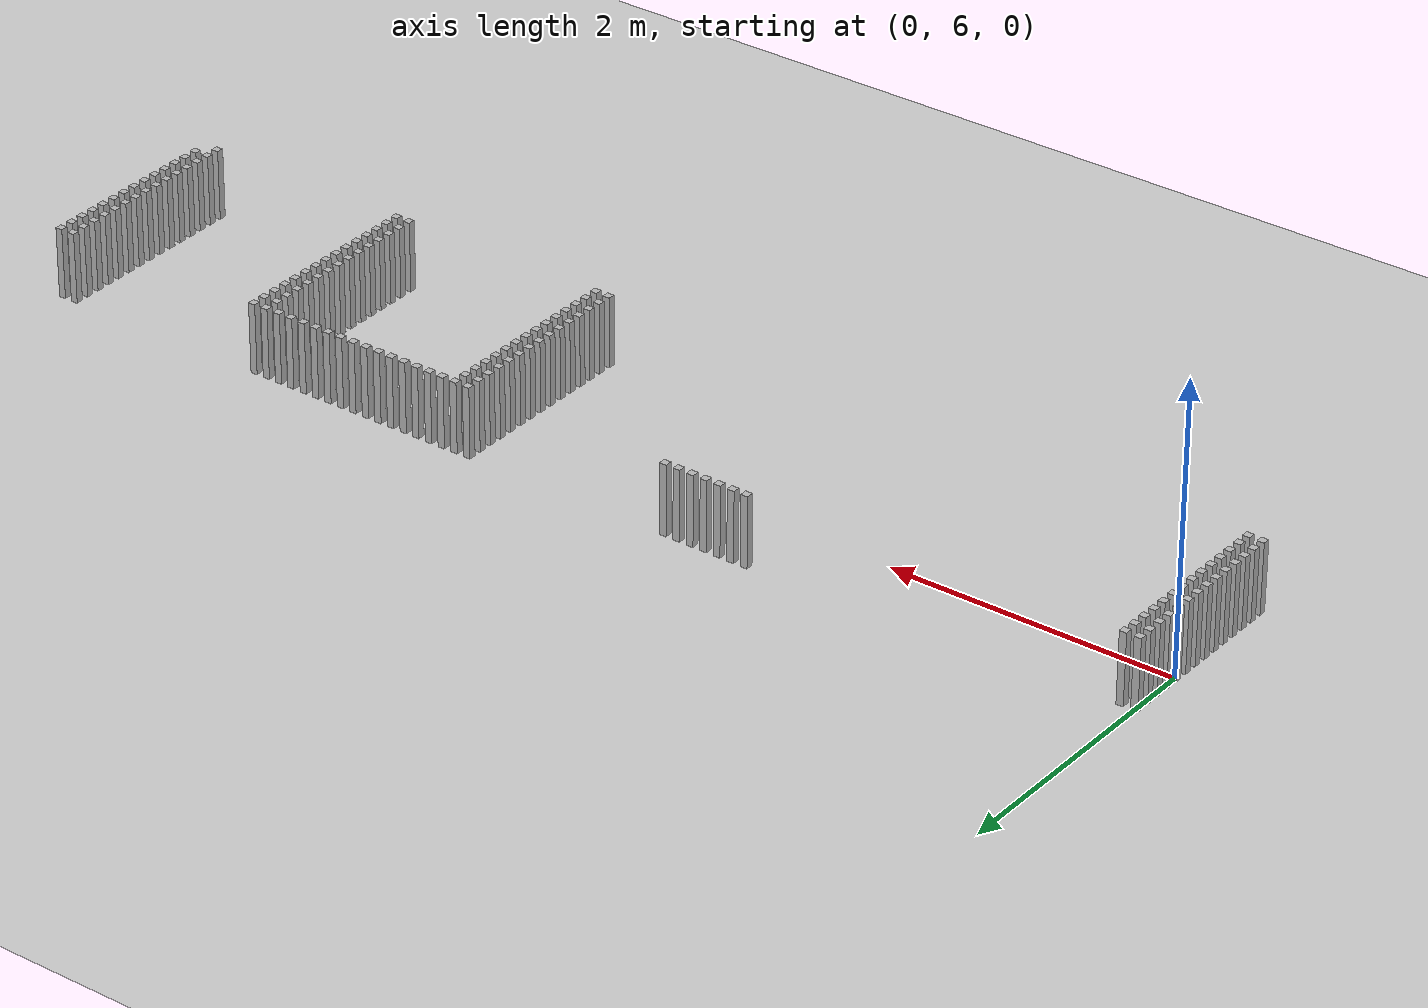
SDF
<sdf version="1.6">
 <world name="default_world">
  <include><uri>model://sun</uri></include>
  <include><uri>model://ground_plane</uri></include>
  <model name="wall_273">
   <static>true</static>
   <link name="link">
    <collision name="collision"><geometry><box><size>0.05 0.05 0.5</size></box></geometry></collision>
    <visual name="visual"><geometry><box><size>0.05 0.05 0.5</size></box></geometry></visual>
    <pose>2.7 6.5 0.25 0 0 0</pose>
   </link>
  </model>
  <model name="wall_274">
   <static>true</static>
   <link name="link">
    <collision name="collision"><geometry><box><size>0.05 0.05 0.5</size></box></geometry></collision>
    <visual name="visual"><geometry><box><size>0.05 0.05 0.5</size></box></geometry></visual>
    <pose>2.8000000000000003 6.5 0.25 0 0 0</pose>
   </link>
  </model>
  <model name="wall_275">
   <static>true</static>
   <link name="link">
    <collision name="collision"><geometry><box><size>0.05 0.05 0.5</size></box></geometry></collision>
    <visual name="visual"><geometry><box><size>0.05 0.05 0.5</size></box></geometry></visual>
    <pose>2.9000000000000004 6.5 0.25 0 0 0</pose>
   </link>
  </model>
  <model name="wall_276">
   <static>true</static>
   <link name="link">
    <collision name="collision"><geometry><box><size>0.05 0.05 0.5</size></box></geometry></collision>
    <visual name="visual"><geometry><box><size>0.05 0.05 0.5</size></box></geometry></visual>
    <pose>3.0 6.5 0.25 0 0 0</pose>
   </link>
  </model>
  <model name="wall_277">
   <static>true</static>
   <link name="link">
    <collision name="collision"><geometry><box><size>0.05 0.05 0.5</size></box></geometry></collision>
    <visual name="visual"><geometry><box><size>0.05 0.05 0.5</size></box></geometry></visual>
    <pose>3.1 6.5 0.25 0 0 0</pose>
   </link>
  </model>
  <model name="wall_278">
   <static>true</static>
   <link name="link">
    <collision name="collision"><geometry><box><size>0.05 0.05 0.5</size></box></geometry></collision>
    <visual name="visual"><geometry><box><size>0.05 0.05 0.5</size></box></geometry></visual>
    <pose>3.2 6.5 0.25 0 0 0</pose>
   </link>
  </model>
  <model name="wall_279">
   <static>true</static>
   <link name="link">
    <collision name="collision"><geometry><box><size>0.05 0.05 0.5</size></box></geometry></collision>
    <visual name="visual"><geometry><box><size>0.05 0.05 0.5</size></box></geometry></visual>
    <pose>3.3000000000000003 6.5 0.25 0 0 0</pose>
   </link>
  </model>
  <model name="wall_280">
   <static>true</static>
   <link name="link">
    <collision name="collision"><geometry><box><size>0.05 0.05 0.5</size></box></geometry></collision>
    <visual name="visual"><geometry><box><size>0.05 0.05 0.5</size></box></geometry></visual>
    <pose>4.800000000000001 6.5 0.25 0 0 0</pose>
   </link>
  </model>
  <model name="wall_281">
   <static>true</static>
   <link name="link">
    <collision name="collision"><geometry><box><size>0.05 0.05 0.5</size></box></geometry></collision>
    <visual name="visual"><geometry><box><size>0.05 0.05 0.5</size></box></geometry></visual>
    <pose>4.9 6.5 0.25 0 0 0</pose>
   </link>
  </model>
  <model name="wall_282">
   <static>true</static>
   <link name="link">
    <collision name="collision"><geometry><box><size>0.05 0.05 0.5</size></box></geometry></collision>
    <visual name="visual"><geometry><box><size>0.05 0.05 0.5</size></box></geometry></visual>
    <pose>5.0 6.5 0.25 0 0 0</pose>
   </link>
  </model>
  <model name="wall_283">
   <static>true</static>
   <link name="link">
    <collision name="collision"><geometry><box><size>0.05 0.05 0.5</size></box></geometry></collision>
    <visual name="visual"><geometry><box><size>0.05 0.05 0.5</size></box></geometry></visual>
    <pose>5.1000000000000005 6.5 0.25 0 0 0</pose>
   </link>
  </model>
  <model name="wall_284">
   <static>true</static>
   <link name="link">
    <collision name="collision"><geometry><box><size>0.05 0.05 0.5</size></box></geometry></collision>
    <visual name="visual"><geometry><box><size>0.05 0.05 0.5</size></box></geometry></visual>
    <pose>5.2 6.5 0.25 0 0 0</pose>
   </link>
  </model>
  <model name="wall_285">
   <static>true</static>
   <link name="link">
    <collision name="collision"><geometry><box><size>0.05 0.05 0.5</size></box></geometry></collision>
    <visual name="visual"><geometry><box><size>0.05 0.05 0.5</size></box></geometry></visual>
    <pose>5.300000000000001 6.5 0.25 0 0 0</pose>
   </link>
  </model>
  <model name="wall_286">
   <static>true</static>
   <link name="link">
    <collision name="collision"><geometry><box><size>0.05 0.05 0.5</size></box></geometry></collision>
    <visual name="visual"><geometry><box><size>0.05 0.05 0.5</size></box></geometry></visual>
    <pose>5.4 6.5 0.25 0 0 0</pose>
   </link>
  </model>
  <model name="wall_287">
   <static>true</static>
   <link name="link">
    <collision name="collision"><geometry><box><size>0.05 0.05 0.5</size></box></geometry></collision>
    <visual name="visual"><geometry><box><size>0.05 0.05 0.5</size></box></geometry></visual>
    <pose>5.5 6.5 0.25 0 0 0</pose>
   </link>
  </model>
  <model name="wall_288">
   <static>true</static>
   <link name="link">
    <collision name="collision"><geometry><box><size>0.05 0.05 0.5</size></box></geometry></collision>
    <visual name="visual"><geometry><box><size>0.05 0.05 0.5</size></box></geometry></visual>
    <pose>5.6000000000000005 6.5 0.25 0 0 0</pose>
   </link>
  </model>
  <model name="wall_289">
   <static>true</static>
   <link name="link">
    <collision name="collision"><geometry><box><size>0.05 0.05 0.5</size></box></geometry></collision>
    <visual name="visual"><geometry><box><size>0.05 0.05 0.5</size></box></geometry></visual>
    <pose>5.7 6.5 0.25 0 0 0</pose>
   </link>
  </model>
  <model name="wall_290">
   <static>true</static>
   <link name="link">
    <collision name="collision"><geometry><box><size>0.05 0.05 0.5</size></box></geometry></collision>
    <visual name="visual"><geometry><box><size>0.05 0.05 0.5</size></box></geometry></visual>
    <pose>5.800000000000001 6.5 0.25 0 0 0</pose>
   </link>
  </model>
  <model name="wall_291">
   <static>true</static>
   <link name="link">
    <collision name="collision"><geometry><box><size>0.05 0.05 0.5</size></box></geometry></collision>
    <visual name="visual"><geometry><box><size>0.05 0.05 0.5</size></box></geometry></visual>
    <pose>5.9 6.5 0.25 0 0 0</pose>
   </link>
  </model>
  <model name="wall_292">
   <static>true</static>
   <link name="link">
    <collision name="collision"><geometry><box><size>0.05 0.05 0.5</size></box></geometry></collision>
    <visual name="visual"><geometry><box><size>0.05 0.05 0.5</size></box></geometry></visual>
    <pose>6.0 6.5 0.25 0 0 0</pose>
   </link>
  </model>
  <model name="wall_293">
   <static>true</static>
   <link name="link">
    <collision name="collision"><geometry><box><size>0.05 0.05 0.5</size></box></geometry></collision>
    <visual name="visual"><geometry><box><size>0.05 0.05 0.5</size></box></geometry></visual>
    <pose>6.1000000000000005 6.5 0.25 0 0 0</pose>
   </link>
  </model>
  <model name="wall_294">
   <static>true</static>
   <link name="link">
    <collision name="collision"><geometry><box><size>0.05 0.05 0.5</size></box></geometry></collision>
    <visual name="visual"><geometry><box><size>0.05 0.05 0.5</size></box></geometry></visual>
    <pose>6.2 6.5 0.25 0 0 0</pose>
   </link>
  </model>
  <model name="wall_295">
   <static>true</static>
   <link name="link">
    <collision name="collision"><geometry><box><size>0.05 0.05 0.5</size></box></geometry></collision>
    <visual name="visual"><geometry><box><size>0.05 0.05 0.5</size></box></geometry></visual>
    <pose>6.300000000000001 6.5 0.25 0 0 0</pose>
   </link>
  </model>
  <model name="wall_296">
   <static>true</static>
   <link name="link">
    <collision name="collision"><geometry><box><size>0.05 0.05 0.5</size></box></geometry></collision>
    <visual name="visual"><geometry><box><size>0.05 0.05 0.5</size></box></geometry></visual>
    <pose>6.4 6.5 0.25 0 0 0</pose>
   </link>
  </model>
  <model name="wall_297">
   <static>true</static>
   <link name="link">
    <collision name="collision"><geometry><box><size>0.05 0.05 0.5</size></box></geometry></collision>
    <visual name="visual"><geometry><box><size>0.05 0.05 0.5</size></box></geometry></visual>
    <pose>6.5 6.5 0.25 0 0 0</pose>
   </link>
  </model>
  <model name="wall_298">
   <static>true</static>
   <link name="link">
    <collision name="collision"><geometry><box><size>0.05 0.05 0.5</size></box></geometry></collision>
    <visual name="visual"><geometry><box><size>0.05 0.05 0.5</size></box></geometry></visual>
    <pose>8.0 6.5 0.25 0 0 0</pose>
   </link>
  </model>
  <model name="wall_299">
   <static>true</static>
   <link name="link">
    <collision name="collision"><geometry><box><size>0.05 0.05 0.5</size></box></geometry></collision>
    <visual name="visual"><geometry><box><size>0.05 0.05 0.5</size></box></geometry></visual>
    <pose>8.1 6.5 0.25 0 0 0</pose>
   </link>
  </model>
  <model name="wall_300">
   <static>true</static>
   <link name="link">
    <collision name="collision"><geometry><box><size>0.05 0.05 0.5</size></box></geometry></collision>
    <visual name="visual"><geometry><box><size>0.05 0.05 0.5</size></box></geometry></visual>
    <pose>0.0 6.4 0.25 0 0 0</pose>
   </link>
  </model>
  <model name="wall_301">
   <static>true</static>
   <link name="link">
    <collision name="collision"><geometry><box><size>0.05 0.05 0.5</size></box></geometry></collision>
    <visual name="visual"><geometry><box><size>0.05 0.05 0.5</size></box></geometry></visual>
    <pose>0.1 6.4 0.25 0 0 0</pose>
   </link>
  </model>
  <model name="wall_302">
   <static>true</static>
   <link name="link">
    <collision name="collision"><geometry><box><size>0.05 0.05 0.5</size></box></geometry></collision>
    <visual name="visual"><geometry><box><size>0.05 0.05 0.5</size></box></geometry></visual>
    <pose>4.800000000000001 6.4 0.25 0 0 0</pose>
   </link>
  </model>
  <model name="wall_303">
   <static>true</static>
   <link name="link">
    <collision name="collision"><geometry><box><size>0.05 0.05 0.5</size></box></geometry></collision>
    <visual name="visual"><geometry><box><size>0.05 0.05 0.5</size></box></geometry></visual>
    <pose>4.9 6.4 0.25 0 0 0</pose>
   </link>
  </model>
  <model name="wall_304">
   <static>true</static>
   <link name="link">
    <collision name="collision"><geometry><box><size>0.05 0.05 0.5</size></box></geometry></collision>
    <visual name="visual"><geometry><box><size>0.05 0.05 0.5</size></box></geometry></visual>
    <pose>6.4 6.4 0.25 0 0 0</pose>
   </link>
  </model>
  <model name="wall_305">
   <static>true</static>
   <link name="link">
    <collision name="collision"><geometry><box><size>0.05 0.05 0.5</size></box></geometry></collision>
    <visual name="visual"><geometry><box><size>0.05 0.05 0.5</size></box></geometry></visual>
    <pose>6.5 6.4 0.25 0 0 0</pose>
   </link>
  </model>
  <model name="wall_306">
   <static>true</static>
   <link name="link">
    <collision name="collision"><geometry><box><size>0.05 0.05 0.5</size></box></geometry></collision>
    <visual name="visual"><geometry><box><size>0.05 0.05 0.5</size></box></geometry></visual>
    <pose>8.0 6.4 0.25 0 0 0</pose>
   </link>
  </model>
  <model name="wall_307">
   <static>true</static>
   <link name="link">
    <collision name="collision"><geometry><box><size>0.05 0.05 0.5</size></box></geometry></collision>
    <visual name="visual"><geometry><box><size>0.05 0.05 0.5</size></box></geometry></visual>
    <pose>8.1 6.4 0.25 0 0 0</pose>
   </link>
  </model>
  <model name="wall_308">
   <static>true</static>
   <link name="link">
    <collision name="collision"><geometry><box><size>0.05 0.05 0.5</size></box></geometry></collision>
    <visual name="visual"><geometry><box><size>0.05 0.05 0.5</size></box></geometry></visual>
    <pose>0.0 6.300000000000001 0.25 0 0 0</pose>
   </link>
  </model>
  <model name="wall_309">
   <static>true</static>
   <link name="link">
    <collision name="collision"><geometry><box><size>0.05 0.05 0.5</size></box></geometry></collision>
    <visual name="visual"><geometry><box><size>0.05 0.05 0.5</size></box></geometry></visual>
    <pose>0.1 6.300000000000001 0.25 0 0 0</pose>
   </link>
  </model>
  <model name="wall_310">
   <static>true</static>
   <link name="link">
    <collision name="collision"><geometry><box><size>0.05 0.05 0.5</size></box></geometry></collision>
    <visual name="visual"><geometry><box><size>0.05 0.05 0.5</size></box></geometry></visual>
    <pose>4.800000000000001 6.300000000000001 0.25 0 0 0</pose>
   </link>
  </model>
  <model name="wall_311">
   <static>true</static>
   <link name="link">
    <collision name="collision"><geometry><box><size>0.05 0.05 0.5</size></box></geometry></collision>
    <visual name="visual"><geometry><box><size>0.05 0.05 0.5</size></box></geometry></visual>
    <pose>4.9 6.300000000000001 0.25 0 0 0</pose>
   </link>
  </model>
  <model name="wall_312">
   <static>true</static>
   <link name="link">
    <collision name="collision"><geometry><box><size>0.05 0.05 0.5</size></box></geometry></collision>
    <visual name="visual"><geometry><box><size>0.05 0.05 0.5</size></box></geometry></visual>
    <pose>6.4 6.300000000000001 0.25 0 0 0</pose>
   </link>
  </model>
  <model name="wall_313">
   <static>true</static>
   <link name="link">
    <collision name="collision"><geometry><box><size>0.05 0.05 0.5</size></box></geometry></collision>
    <visual name="visual"><geometry><box><size>0.05 0.05 0.5</size></box></geometry></visual>
    <pose>6.5 6.300000000000001 0.25 0 0 0</pose>
   </link>
  </model>
  <model name="wall_314">
   <static>true</static>
   <link name="link">
    <collision name="collision"><geometry><box><size>0.05 0.05 0.5</size></box></geometry></collision>
    <visual name="visual"><geometry><box><size>0.05 0.05 0.5</size></box></geometry></visual>
    <pose>8.0 6.300000000000001 0.25 0 0 0</pose>
   </link>
  </model>
  <model name="wall_315">
   <static>true</static>
   <link name="link">
    <collision name="collision"><geometry><box><size>0.05 0.05 0.5</size></box></geometry></collision>
    <visual name="visual"><geometry><box><size>0.05 0.05 0.5</size></box></geometry></visual>
    <pose>8.1 6.300000000000001 0.25 0 0 0</pose>
   </link>
  </model>
  <model name="wall_316">
   <static>true</static>
   <link name="link">
    <collision name="collision"><geometry><box><size>0.05 0.05 0.5</size></box></geometry></collision>
    <visual name="visual"><geometry><box><size>0.05 0.05 0.5</size></box></geometry></visual>
    <pose>0.0 6.2 0.25 0 0 0</pose>
   </link>
  </model>
  <model name="wall_317">
   <static>true</static>
   <link name="link">
    <collision name="collision"><geometry><box><size>0.05 0.05 0.5</size></box></geometry></collision>
    <visual name="visual"><geometry><box><size>0.05 0.05 0.5</size></box></geometry></visual>
    <pose>0.1 6.2 0.25 0 0 0</pose>
   </link>
  </model>
  <model name="wall_318">
   <static>true</static>
   <link name="link">
    <collision name="collision"><geometry><box><size>0.05 0.05 0.5</size></box></geometry></collision>
    <visual name="visual"><geometry><box><size>0.05 0.05 0.5</size></box></geometry></visual>
    <pose>4.800000000000001 6.2 0.25 0 0 0</pose>
   </link>
  </model>
  <model name="wall_319">
   <static>true</static>
   <link name="link">
    <collision name="collision"><geometry><box><size>0.05 0.05 0.5</size></box></geometry></collision>
    <visual name="visual"><geometry><box><size>0.05 0.05 0.5</size></box></geometry></visual>
    <pose>4.9 6.2 0.25 0 0 0</pose>
   </link>
  </model>
  <model name="wall_320">
   <static>true</static>
   <link name="link">
    <collision name="collision"><geometry><box><size>0.05 0.05 0.5</size></box></geometry></collision>
    <visual name="visual"><geometry><box><size>0.05 0.05 0.5</size></box></geometry></visual>
    <pose>6.4 6.2 0.25 0 0 0</pose>
   </link>
  </model>
  <model name="wall_321">
   <static>true</static>
   <link name="link">
    <collision name="collision"><geometry><box><size>0.05 0.05 0.5</size></box></geometry></collision>
    <visual name="visual"><geometry><box><size>0.05 0.05 0.5</size></box></geometry></visual>
    <pose>6.5 6.2 0.25 0 0 0</pose>
   </link>
  </model>
  <model name="wall_322">
   <static>true</static>
   <link name="link">
    <collision name="collision"><geometry><box><size>0.05 0.05 0.5</size></box></geometry></collision>
    <visual name="visual"><geometry><box><size>0.05 0.05 0.5</size></box></geometry></visual>
    <pose>8.0 6.2 0.25 0 0 0</pose>
   </link>
  </model>
  <model name="wall_323">
   <static>true</static>
   <link name="link">
    <collision name="collision"><geometry><box><size>0.05 0.05 0.5</size></box></geometry></collision>
    <visual name="visual"><geometry><box><size>0.05 0.05 0.5</size></box></geometry></visual>
    <pose>8.1 6.2 0.25 0 0 0</pose>
   </link>
  </model>
  <model name="wall_324">
   <static>true</static>
   <link name="link">
    <collision name="collision"><geometry><box><size>0.05 0.05 0.5</size></box></geometry></collision>
    <visual name="visual"><geometry><box><size>0.05 0.05 0.5</size></box></geometry></visual>
    <pose>0.0 6.1000000000000005 0.25 0 0 0</pose>
   </link>
  </model>
  <model name="wall_325">
   <static>true</static>
   <link name="link">
    <collision name="collision"><geometry><box><size>0.05 0.05 0.5</size></box></geometry></collision>
    <visual name="visual"><geometry><box><size>0.05 0.05 0.5</size></box></geometry></visual>
    <pose>0.1 6.1000000000000005 0.25 0 0 0</pose>
   </link>
  </model>
  <model name="wall_326">
   <static>true</static>
   <link name="link">
    <collision name="collision"><geometry><box><size>0.05 0.05 0.5</size></box></geometry></collision>
    <visual name="visual"><geometry><box><size>0.05 0.05 0.5</size></box></geometry></visual>
    <pose>4.800000000000001 6.1000000000000005 0.25 0 0 0</pose>
   </link>
  </model>
  <model name="wall_327">
   <static>true</static>
   <link name="link">
    <collision name="collision"><geometry><box><size>0.05 0.05 0.5</size></box></geometry></collision>
    <visual name="visual"><geometry><box><size>0.05 0.05 0.5</size></box></geometry></visual>
    <pose>4.9 6.1000000000000005 0.25 0 0 0</pose>
   </link>
  </model>
  <model name="wall_328">
   <static>true</static>
   <link name="link">
    <collision name="collision"><geometry><box><size>0.05 0.05 0.5</size></box></geometry></collision>
    <visual name="visual"><geometry><box><size>0.05 0.05 0.5</size></box></geometry></visual>
    <pose>6.4 6.1000000000000005 0.25 0 0 0</pose>
   </link>
  </model>
  <model name="wall_329">
   <static>true</static>
   <link name="link">
    <collision name="collision"><geometry><box><size>0.05 0.05 0.5</size></box></geometry></collision>
    <visual name="visual"><geometry><box><size>0.05 0.05 0.5</size></box></geometry></visual>
    <pose>6.5 6.1000000000000005 0.25 0 0 0</pose>
   </link>
  </model>
  <model name="wall_330">
   <static>true</static>
   <link name="link">
    <collision name="collision"><geometry><box><size>0.05 0.05 0.5</size></box></geometry></collision>
    <visual name="visual"><geometry><box><size>0.05 0.05 0.5</size></box></geometry></visual>
    <pose>8.0 6.1000000000000005 0.25 0 0 0</pose>
   </link>
  </model>
  <model name="wall_331">
   <static>true</static>
   <link name="link">
    <collision name="collision"><geometry><box><size>0.05 0.05 0.5</size></box></geometry></collision>
    <visual name="visual"><geometry><box><size>0.05 0.05 0.5</size></box></geometry></visual>
    <pose>8.1 6.1000000000000005 0.25 0 0 0</pose>
   </link>
  </model>
  <model name="wall_332">
   <static>true</static>
   <link name="link">
    <collision name="collision"><geometry><box><size>0.05 0.05 0.5</size></box></geometry></collision>
    <visual name="visual"><geometry><box><size>0.05 0.05 0.5</size></box></geometry></visual>
    <pose>0.0 6.0 0.25 0 0 0</pose>
   </link>
  </model>
  <model name="wall_333">
   <static>true</static>
   <link name="link">
    <collision name="collision"><geometry><box><size>0.05 0.05 0.5</size></box></geometry></collision>
    <visual name="visual"><geometry><box><size>0.05 0.05 0.5</size></box></geometry></visual>
    <pose>0.1 6.0 0.25 0 0 0</pose>
   </link>
  </model>
  <model name="wall_334">
   <static>true</static>
   <link name="link">
    <collision name="collision"><geometry><box><size>0.05 0.05 0.5</size></box></geometry></collision>
    <visual name="visual"><geometry><box><size>0.05 0.05 0.5</size></box></geometry></visual>
    <pose>4.800000000000001 6.0 0.25 0 0 0</pose>
   </link>
  </model>
  <model name="wall_335">
   <static>true</static>
   <link name="link">
    <collision name="collision"><geometry><box><size>0.05 0.05 0.5</size></box></geometry></collision>
    <visual name="visual"><geometry><box><size>0.05 0.05 0.5</size></box></geometry></visual>
    <pose>4.9 6.0 0.25 0 0 0</pose>
   </link>
  </model>
  <model name="wall_336">
   <static>true</static>
   <link name="link">
    <collision name="collision"><geometry><box><size>0.05 0.05 0.5</size></box></geometry></collision>
    <visual name="visual"><geometry><box><size>0.05 0.05 0.5</size></box></geometry></visual>
    <pose>6.4 6.0 0.25 0 0 0</pose>
   </link>
  </model>
  <model name="wall_337">
   <static>true</static>
   <link name="link">
    <collision name="collision"><geometry><box><size>0.05 0.05 0.5</size></box></geometry></collision>
    <visual name="visual"><geometry><box><size>0.05 0.05 0.5</size></box></geometry></visual>
    <pose>6.5 6.0 0.25 0 0 0</pose>
   </link>
  </model>
  <model name="wall_338">
   <static>true</static>
   <link name="link">
    <collision name="collision"><geometry><box><size>0.05 0.05 0.5</size></box></geometry></collision>
    <visual name="visual"><geometry><box><size>0.05 0.05 0.5</size></box></geometry></visual>
    <pose>8.0 6.0 0.25 0 0 0</pose>
   </link>
  </model>
  <model name="wall_339">
   <static>true</static>
   <link name="link">
    <collision name="collision"><geometry><box><size>0.05 0.05 0.5</size></box></geometry></collision>
    <visual name="visual"><geometry><box><size>0.05 0.05 0.5</size></box></geometry></visual>
    <pose>8.1 6.0 0.25 0 0 0</pose>
   </link>
  </model>
  <model name="wall_340">
   <static>true</static>
   <link name="link">
    <collision name="collision"><geometry><box><size>0.05 0.05 0.5</size></box></geometry></collision>
    <visual name="visual"><geometry><box><size>0.05 0.05 0.5</size></box></geometry></visual>
    <pose>0.0 5.9 0.25 0 0 0</pose>
   </link>
  </model>
  <model name="wall_341">
   <static>true</static>
   <link name="link">
    <collision name="collision"><geometry><box><size>0.05 0.05 0.5</size></box></geometry></collision>
    <visual name="visual"><geometry><box><size>0.05 0.05 0.5</size></box></geometry></visual>
    <pose>0.1 5.9 0.25 0 0 0</pose>
   </link>
  </model>
  <model name="wall_342">
   <static>true</static>
   <link name="link">
    <collision name="collision"><geometry><box><size>0.05 0.05 0.5</size></box></geometry></collision>
    <visual name="visual"><geometry><box><size>0.05 0.05 0.5</size></box></geometry></visual>
    <pose>4.800000000000001 5.9 0.25 0 0 0</pose>
   </link>
  </model>
  <model name="wall_343">
   <static>true</static>
   <link name="link">
    <collision name="collision"><geometry><box><size>0.05 0.05 0.5</size></box></geometry></collision>
    <visual name="visual"><geometry><box><size>0.05 0.05 0.5</size></box></geometry></visual>
    <pose>4.9 5.9 0.25 0 0 0</pose>
   </link>
  </model>
  <model name="wall_344">
   <static>true</static>
   <link name="link">
    <collision name="collision"><geometry><box><size>0.05 0.05 0.5</size></box></geometry></collision>
    <visual name="visual"><geometry><box><size>0.05 0.05 0.5</size></box></geometry></visual>
    <pose>6.4 5.9 0.25 0 0 0</pose>
   </link>
  </model>
  <model name="wall_345">
   <static>true</static>
   <link name="link">
    <collision name="collision"><geometry><box><size>0.05 0.05 0.5</size></box></geometry></collision>
    <visual name="visual"><geometry><box><size>0.05 0.05 0.5</size></box></geometry></visual>
    <pose>6.5 5.9 0.25 0 0 0</pose>
   </link>
  </model>
  <model name="wall_346">
   <static>true</static>
   <link name="link">
    <collision name="collision"><geometry><box><size>0.05 0.05 0.5</size></box></geometry></collision>
    <visual name="visual"><geometry><box><size>0.05 0.05 0.5</size></box></geometry></visual>
    <pose>8.0 5.9 0.25 0 0 0</pose>
   </link>
  </model>
  <model name="wall_347">
   <static>true</static>
   <link name="link">
    <collision name="collision"><geometry><box><size>0.05 0.05 0.5</size></box></geometry></collision>
    <visual name="visual"><geometry><box><size>0.05 0.05 0.5</size></box></geometry></visual>
    <pose>8.1 5.9 0.25 0 0 0</pose>
   </link>
  </model>
  <model name="wall_348">
   <static>true</static>
   <link name="link">
    <collision name="collision"><geometry><box><size>0.05 0.05 0.5</size></box></geometry></collision>
    <visual name="visual"><geometry><box><size>0.05 0.05 0.5</size></box></geometry></visual>
    <pose>0.0 5.800000000000001 0.25 0 0 0</pose>
   </link>
  </model>
  <model name="wall_349">
   <static>true</static>
   <link name="link">
    <collision name="collision"><geometry><box><size>0.05 0.05 0.5</size></box></geometry></collision>
    <visual name="visual"><geometry><box><size>0.05 0.05 0.5</size></box></geometry></visual>
    <pose>0.1 5.800000000000001 0.25 0 0 0</pose>
   </link>
  </model>
  <model name="wall_350">
   <static>true</static>
   <link name="link">
    <collision name="collision"><geometry><box><size>0.05 0.05 0.5</size></box></geometry></collision>
    <visual name="visual"><geometry><box><size>0.05 0.05 0.5</size></box></geometry></visual>
    <pose>4.800000000000001 5.800000000000001 0.25 0 0 0</pose>
   </link>
  </model>
  <model name="wall_351">
   <static>true</static>
   <link name="link">
    <collision name="collision"><geometry><box><size>0.05 0.05 0.5</size></box></geometry></collision>
    <visual name="visual"><geometry><box><size>0.05 0.05 0.5</size></box></geometry></visual>
    <pose>4.9 5.800000000000001 0.25 0 0 0</pose>
   </link>
  </model>
  <model name="wall_352">
   <static>true</static>
   <link name="link">
    <collision name="collision"><geometry><box><size>0.05 0.05 0.5</size></box></geometry></collision>
    <visual name="visual"><geometry><box><size>0.05 0.05 0.5</size></box></geometry></visual>
    <pose>6.4 5.800000000000001 0.25 0 0 0</pose>
   </link>
  </model>
  <model name="wall_353">
   <static>true</static>
   <link name="link">
    <collision name="collision"><geometry><box><size>0.05 0.05 0.5</size></box></geometry></collision>
    <visual name="visual"><geometry><box><size>0.05 0.05 0.5</size></box></geometry></visual>
    <pose>6.5 5.800000000000001 0.25 0 0 0</pose>
   </link>
  </model>
  <model name="wall_354">
   <static>true</static>
   <link name="link">
    <collision name="collision"><geometry><box><size>0.05 0.05 0.5</size></box></geometry></collision>
    <visual name="visual"><geometry><box><size>0.05 0.05 0.5</size></box></geometry></visual>
    <pose>8.0 5.800000000000001 0.25 0 0 0</pose>
   </link>
  </model>
  <model name="wall_355">
   <static>true</static>
   <link name="link">
    <collision name="collision"><geometry><box><size>0.05 0.05 0.5</size></box></geometry></collision>
    <visual name="visual"><geometry><box><size>0.05 0.05 0.5</size></box></geometry></visual>
    <pose>8.1 5.800000000000001 0.25 0 0 0</pose>
   </link>
  </model>
  <model name="wall_356">
   <static>true</static>
   <link name="link">
    <collision name="collision"><geometry><box><size>0.05 0.05 0.5</size></box></geometry></collision>
    <visual name="visual"><geometry><box><size>0.05 0.05 0.5</size></box></geometry></visual>
    <pose>0.0 5.7 0.25 0 0 0</pose>
   </link>
  </model>
  <model name="wall_357">
   <static>true</static>
   <link name="link">
    <collision name="collision"><geometry><box><size>0.05 0.05 0.5</size></box></geometry></collision>
    <visual name="visual"><geometry><box><size>0.05 0.05 0.5</size></box></geometry></visual>
    <pose>0.1 5.7 0.25 0 0 0</pose>
   </link>
  </model>
  <model name="wall_358">
   <static>true</static>
   <link name="link">
    <collision name="collision"><geometry><box><size>0.05 0.05 0.5</size></box></geometry></collision>
    <visual name="visual"><geometry><box><size>0.05 0.05 0.5</size></box></geometry></visual>
    <pose>4.800000000000001 5.7 0.25 0 0 0</pose>
   </link>
  </model>
  <model name="wall_359">
   <static>true</static>
   <link name="link">
    <collision name="collision"><geometry><box><size>0.05 0.05 0.5</size></box></geometry></collision>
    <visual name="visual"><geometry><box><size>0.05 0.05 0.5</size></box></geometry></visual>
    <pose>4.9 5.7 0.25 0 0 0</pose>
   </link>
  </model>
  <model name="wall_360">
   <static>true</static>
   <link name="link">
    <collision name="collision"><geometry><box><size>0.05 0.05 0.5</size></box></geometry></collision>
    <visual name="visual"><geometry><box><size>0.05 0.05 0.5</size></box></geometry></visual>
    <pose>6.4 5.7 0.25 0 0 0</pose>
   </link>
  </model>
  <model name="wall_361">
   <static>true</static>
   <link name="link">
    <collision name="collision"><geometry><box><size>0.05 0.05 0.5</size></box></geometry></collision>
    <visual name="visual"><geometry><box><size>0.05 0.05 0.5</size></box></geometry></visual>
    <pose>6.5 5.7 0.25 0 0 0</pose>
   </link>
  </model>
  <model name="wall_362">
   <static>true</static>
   <link name="link">
    <collision name="collision"><geometry><box><size>0.05 0.05 0.5</size></box></geometry></collision>
    <visual name="visual"><geometry><box><size>0.05 0.05 0.5</size></box></geometry></visual>
    <pose>8.0 5.7 0.25 0 0 0</pose>
   </link>
  </model>
  <model name="wall_363">
   <static>true</static>
   <link name="link">
    <collision name="collision"><geometry><box><size>0.05 0.05 0.5</size></box></geometry></collision>
    <visual name="visual"><geometry><box><size>0.05 0.05 0.5</size></box></geometry></visual>
    <pose>8.1 5.7 0.25 0 0 0</pose>
   </link>
  </model>
  <model name="wall_364">
   <static>true</static>
   <link name="link">
    <collision name="collision"><geometry><box><size>0.05 0.05 0.5</size></box></geometry></collision>
    <visual name="visual"><geometry><box><size>0.05 0.05 0.5</size></box></geometry></visual>
    <pose>0.0 5.6000000000000005 0.25 0 0 0</pose>
   </link>
  </model>
  <model name="wall_365">
   <static>true</static>
   <link name="link">
    <collision name="collision"><geometry><box><size>0.05 0.05 0.5</size></box></geometry></collision>
    <visual name="visual"><geometry><box><size>0.05 0.05 0.5</size></box></geometry></visual>
    <pose>0.1 5.6000000000000005 0.25 0 0 0</pose>
   </link>
  </model>
  <model name="wall_366">
   <static>true</static>
   <link name="link">
    <collision name="collision"><geometry><box><size>0.05 0.05 0.5</size></box></geometry></collision>
    <visual name="visual"><geometry><box><size>0.05 0.05 0.5</size></box></geometry></visual>
    <pose>4.800000000000001 5.6000000000000005 0.25 0 0 0</pose>
   </link>
  </model>
  <model name="wall_367">
   <static>true</static>
   <link name="link">
    <collision name="collision"><geometry><box><size>0.05 0.05 0.5</size></box></geometry></collision>
    <visual name="visual"><geometry><box><size>0.05 0.05 0.5</size></box></geometry></visual>
    <pose>4.9 5.6000000000000005 0.25 0 0 0</pose>
   </link>
  </model>
  <model name="wall_368">
   <static>true</static>
   <link name="link">
    <collision name="collision"><geometry><box><size>0.05 0.05 0.5</size></box></geometry></collision>
    <visual name="visual"><geometry><box><size>0.05 0.05 0.5</size></box></geometry></visual>
    <pose>6.4 5.6000000000000005 0.25 0 0 0</pose>
   </link>
  </model>
  <model name="wall_369">
   <static>true</static>
   <link name="link">
    <collision name="collision"><geometry><box><size>0.05 0.05 0.5</size></box></geometry></collision>
    <visual name="visual"><geometry><box><size>0.05 0.05 0.5</size></box></geometry></visual>
    <pose>6.5 5.6000000000000005 0.25 0 0 0</pose>
   </link>
  </model>
  <model name="wall_370">
   <static>true</static>
   <link name="link">
    <collision name="collision"><geometry><box><size>0.05 0.05 0.5</size></box></geometry></collision>
    <visual name="visual"><geometry><box><size>0.05 0.05 0.5</size></box></geometry></visual>
    <pose>8.0 5.6000000000000005 0.25 0 0 0</pose>
   </link>
  </model>
  <model name="wall_371">
   <static>true</static>
   <link name="link">
    <collision name="collision"><geometry><box><size>0.05 0.05 0.5</size></box></geometry></collision>
    <visual name="visual"><geometry><box><size>0.05 0.05 0.5</size></box></geometry></visual>
    <pose>8.1 5.6000000000000005 0.25 0 0 0</pose>
   </link>
  </model>
  <model name="wall_372">
   <static>true</static>
   <link name="link">
    <collision name="collision"><geometry><box><size>0.05 0.05 0.5</size></box></geometry></collision>
    <visual name="visual"><geometry><box><size>0.05 0.05 0.5</size></box></geometry></visual>
    <pose>0.0 5.5 0.25 0 0 0</pose>
   </link>
  </model>
  <model name="wall_373">
   <static>true</static>
   <link name="link">
    <collision name="collision"><geometry><box><size>0.05 0.05 0.5</size></box></geometry></collision>
    <visual name="visual"><geometry><box><size>0.05 0.05 0.5</size></box></geometry></visual>
    <pose>0.1 5.5 0.25 0 0 0</pose>
   </link>
  </model>
  <model name="wall_374">
   <static>true</static>
   <link name="link">
    <collision name="collision"><geometry><box><size>0.05 0.05 0.5</size></box></geometry></collision>
    <visual name="visual"><geometry><box><size>0.05 0.05 0.5</size></box></geometry></visual>
    <pose>4.800000000000001 5.5 0.25 0 0 0</pose>
   </link>
  </model>
  <model name="wall_375">
   <static>true</static>
   <link name="link">
    <collision name="collision"><geometry><box><size>0.05 0.05 0.5</size></box></geometry></collision>
    <visual name="visual"><geometry><box><size>0.05 0.05 0.5</size></box></geometry></visual>
    <pose>4.9 5.5 0.25 0 0 0</pose>
   </link>
  </model>
  <model name="wall_376">
   <static>true</static>
   <link name="link">
    <collision name="collision"><geometry><box><size>0.05 0.05 0.5</size></box></geometry></collision>
    <visual name="visual"><geometry><box><size>0.05 0.05 0.5</size></box></geometry></visual>
    <pose>6.4 5.5 0.25 0 0 0</pose>
   </link>
  </model>
  <model name="wall_377">
   <static>true</static>
   <link name="link">
    <collision name="collision"><geometry><box><size>0.05 0.05 0.5</size></box></geometry></collision>
    <visual name="visual"><geometry><box><size>0.05 0.05 0.5</size></box></geometry></visual>
    <pose>6.5 5.5 0.25 0 0 0</pose>
   </link>
  </model>
  <model name="wall_378">
   <static>true</static>
   <link name="link">
    <collision name="collision"><geometry><box><size>0.05 0.05 0.5</size></box></geometry></collision>
    <visual name="visual"><geometry><box><size>0.05 0.05 0.5</size></box></geometry></visual>
    <pose>8.0 5.5 0.25 0 0 0</pose>
   </link>
  </model>
  <model name="wall_379">
   <static>true</static>
   <link name="link">
    <collision name="collision"><geometry><box><size>0.05 0.05 0.5</size></box></geometry></collision>
    <visual name="visual"><geometry><box><size>0.05 0.05 0.5</size></box></geometry></visual>
    <pose>8.1 5.5 0.25 0 0 0</pose>
   </link>
  </model>
  <model name="wall_380">
   <static>true</static>
   <link name="link">
    <collision name="collision"><geometry><box><size>0.05 0.05 0.5</size></box></geometry></collision>
    <visual name="visual"><geometry><box><size>0.05 0.05 0.5</size></box></geometry></visual>
    <pose>0.0 5.4 0.25 0 0 0</pose>
   </link>
  </model>
  <model name="wall_381">
   <static>true</static>
   <link name="link">
    <collision name="collision"><geometry><box><size>0.05 0.05 0.5</size></box></geometry></collision>
    <visual name="visual"><geometry><box><size>0.05 0.05 0.5</size></box></geometry></visual>
    <pose>0.1 5.4 0.25 0 0 0</pose>
   </link>
  </model>
  <model name="wall_382">
   <static>true</static>
   <link name="link">
    <collision name="collision"><geometry><box><size>0.05 0.05 0.5</size></box></geometry></collision>
    <visual name="visual"><geometry><box><size>0.05 0.05 0.5</size></box></geometry></visual>
    <pose>4.800000000000001 5.4 0.25 0 0 0</pose>
   </link>
  </model>
  <model name="wall_383">
   <static>true</static>
   <link name="link">
    <collision name="collision"><geometry><box><size>0.05 0.05 0.5</size></box></geometry></collision>
    <visual name="visual"><geometry><box><size>0.05 0.05 0.5</size></box></geometry></visual>
    <pose>4.9 5.4 0.25 0 0 0</pose>
   </link>
  </model>
  <model name="wall_384">
   <static>true</static>
   <link name="link">
    <collision name="collision"><geometry><box><size>0.05 0.05 0.5</size></box></geometry></collision>
    <visual name="visual"><geometry><box><size>0.05 0.05 0.5</size></box></geometry></visual>
    <pose>6.4 5.4 0.25 0 0 0</pose>
   </link>
  </model>
  <model name="wall_385">
   <static>true</static>
   <link name="link">
    <collision name="collision"><geometry><box><size>0.05 0.05 0.5</size></box></geometry></collision>
    <visual name="visual"><geometry><box><size>0.05 0.05 0.5</size></box></geometry></visual>
    <pose>6.5 5.4 0.25 0 0 0</pose>
   </link>
  </model>
  <model name="wall_386">
   <static>true</static>
   <link name="link">
    <collision name="collision"><geometry><box><size>0.05 0.05 0.5</size></box></geometry></collision>
    <visual name="visual"><geometry><box><size>0.05 0.05 0.5</size></box></geometry></visual>
    <pose>8.0 5.4 0.25 0 0 0</pose>
   </link>
  </model>
  <model name="wall_387">
   <static>true</static>
   <link name="link">
    <collision name="collision"><geometry><box><size>0.05 0.05 0.5</size></box></geometry></collision>
    <visual name="visual"><geometry><box><size>0.05 0.05 0.5</size></box></geometry></visual>
    <pose>8.1 5.4 0.25 0 0 0</pose>
   </link>
  </model>
  <model name="wall_388">
   <static>true</static>
   <link name="link">
    <collision name="collision"><geometry><box><size>0.05 0.05 0.5</size></box></geometry></collision>
    <visual name="visual"><geometry><box><size>0.05 0.05 0.5</size></box></geometry></visual>
    <pose>0.0 5.300000000000001 0.25 0 0 0</pose>
   </link>
  </model>
  <model name="wall_389">
   <static>true</static>
   <link name="link">
    <collision name="collision"><geometry><box><size>0.05 0.05 0.5</size></box></geometry></collision>
    <visual name="visual"><geometry><box><size>0.05 0.05 0.5</size></box></geometry></visual>
    <pose>0.1 5.300000000000001 0.25 0 0 0</pose>
   </link>
  </model>
  <model name="wall_390">
   <static>true</static>
   <link name="link">
    <collision name="collision"><geometry><box><size>0.05 0.05 0.5</size></box></geometry></collision>
    <visual name="visual"><geometry><box><size>0.05 0.05 0.5</size></box></geometry></visual>
    <pose>4.800000000000001 5.300000000000001 0.25 0 0 0</pose>
   </link>
  </model>
  <model name="wall_391">
   <static>true</static>
   <link name="link">
    <collision name="collision"><geometry><box><size>0.05 0.05 0.5</size></box></geometry></collision>
    <visual name="visual"><geometry><box><size>0.05 0.05 0.5</size></box></geometry></visual>
    <pose>4.9 5.300000000000001 0.25 0 0 0</pose>
   </link>
  </model>
  <model name="wall_392">
   <static>true</static>
   <link name="link">
    <collision name="collision"><geometry><box><size>0.05 0.05 0.5</size></box></geometry></collision>
    <visual name="visual"><geometry><box><size>0.05 0.05 0.5</size></box></geometry></visual>
    <pose>6.4 5.300000000000001 0.25 0 0 0</pose>
   </link>
  </model>
  <model name="wall_393">
   <static>true</static>
   <link name="link">
    <collision name="collision"><geometry><box><size>0.05 0.05 0.5</size></box></geometry></collision>
    <visual name="visual"><geometry><box><size>0.05 0.05 0.5</size></box></geometry></visual>
    <pose>6.5 5.300000000000001 0.25 0 0 0</pose>
   </link>
  </model>
  <model name="wall_394">
   <static>true</static>
   <link name="link">
    <collision name="collision"><geometry><box><size>0.05 0.05 0.5</size></box></geometry></collision>
    <visual name="visual"><geometry><box><size>0.05 0.05 0.5</size></box></geometry></visual>
    <pose>8.0 5.300000000000001 0.25 0 0 0</pose>
   </link>
  </model>
  <model name="wall_395">
   <static>true</static>
   <link name="link">
    <collision name="collision"><geometry><box><size>0.05 0.05 0.5</size></box></geometry></collision>
    <visual name="visual"><geometry><box><size>0.05 0.05 0.5</size></box></geometry></visual>
    <pose>8.1 5.300000000000001 0.25 0 0 0</pose>
   </link>
  </model>
  <model name="wall_396">
   <static>true</static>
   <link name="link">
    <collision name="collision"><geometry><box><size>0.05 0.05 0.5</size></box></geometry></collision>
    <visual name="visual"><geometry><box><size>0.05 0.05 0.5</size></box></geometry></visual>
    <pose>0.0 5.2 0.25 0 0 0</pose>
   </link>
  </model>
  <model name="wall_397">
   <static>true</static>
   <link name="link">
    <collision name="collision"><geometry><box><size>0.05 0.05 0.5</size></box></geometry></collision>
    <visual name="visual"><geometry><box><size>0.05 0.05 0.5</size></box></geometry></visual>
    <pose>0.1 5.2 0.25 0 0 0</pose>
   </link>
  </model>
  <model name="wall_398">
   <static>true</static>
   <link name="link">
    <collision name="collision"><geometry><box><size>0.05 0.05 0.5</size></box></geometry></collision>
    <visual name="visual"><geometry><box><size>0.05 0.05 0.5</size></box></geometry></visual>
    <pose>4.800000000000001 5.2 0.25 0 0 0</pose>
   </link>
  </model>
  <model name="wall_399">
   <static>true</static>
   <link name="link">
    <collision name="collision"><geometry><box><size>0.05 0.05 0.5</size></box></geometry></collision>
    <visual name="visual"><geometry><box><size>0.05 0.05 0.5</size></box></geometry></visual>
    <pose>4.9 5.2 0.25 0 0 0</pose>
   </link>
  </model>
  <model name="wall_400">
   <static>true</static>
   <link name="link">
    <collision name="collision"><geometry><box><size>0.05 0.05 0.5</size></box></geometry></collision>
    <visual name="visual"><geometry><box><size>0.05 0.05 0.5</size></box></geometry></visual>
    <pose>6.4 5.2 0.25 0 0 0</pose>
   </link>
  </model>
  <model name="wall_401">
   <static>true</static>
   <link name="link">
    <collision name="collision"><geometry><box><size>0.05 0.05 0.5</size></box></geometry></collision>
    <visual name="visual"><geometry><box><size>0.05 0.05 0.5</size></box></geometry></visual>
    <pose>6.5 5.2 0.25 0 0 0</pose>
   </link>
  </model>
  <model name="wall_402">
   <static>true</static>
   <link name="link">
    <collision name="collision"><geometry><box><size>0.05 0.05 0.5</size></box></geometry></collision>
    <visual name="visual"><geometry><box><size>0.05 0.05 0.5</size></box></geometry></visual>
    <pose>8.0 5.2 0.25 0 0 0</pose>
   </link>
  </model>
  <model name="wall_403">
   <static>true</static>
   <link name="link">
    <collision name="collision"><geometry><box><size>0.05 0.05 0.5</size></box></geometry></collision>
    <visual name="visual"><geometry><box><size>0.05 0.05 0.5</size></box></geometry></visual>
    <pose>8.1 5.2 0.25 0 0 0</pose>
   </link>
  </model>
  <model name="wall_404">
   <static>true</static>
   <link name="link">
    <collision name="collision"><geometry><box><size>0.05 0.05 0.5</size></box></geometry></collision>
    <visual name="visual"><geometry><box><size>0.05 0.05 0.5</size></box></geometry></visual>
    <pose>0.0 5.1000000000000005 0.25 0 0 0</pose>
   </link>
  </model>
  <model name="wall_405">
   <static>true</static>
   <link name="link">
    <collision name="collision"><geometry><box><size>0.05 0.05 0.5</size></box></geometry></collision>
    <visual name="visual"><geometry><box><size>0.05 0.05 0.5</size></box></geometry></visual>
    <pose>0.1 5.1000000000000005 0.25 0 0 0</pose>
   </link>
  </model>
  <model name="wall_406">
   <static>true</static>
   <link name="link">
    <collision name="collision"><geometry><box><size>0.05 0.05 0.5</size></box></geometry></collision>
    <visual name="visual"><geometry><box><size>0.05 0.05 0.5</size></box></geometry></visual>
    <pose>4.800000000000001 5.1000000000000005 0.25 0 0 0</pose>
   </link>
  </model>
  <model name="wall_407">
   <static>true</static>
   <link name="link">
    <collision name="collision"><geometry><box><size>0.05 0.05 0.5</size></box></geometry></collision>
    <visual name="visual"><geometry><box><size>0.05 0.05 0.5</size></box></geometry></visual>
    <pose>4.9 5.1000000000000005 0.25 0 0 0</pose>
   </link>
  </model>
  <model name="wall_408">
   <static>true</static>
   <link name="link">
    <collision name="collision"><geometry><box><size>0.05 0.05 0.5</size></box></geometry></collision>
    <visual name="visual"><geometry><box><size>0.05 0.05 0.5</size></box></geometry></visual>
    <pose>6.4 5.1000000000000005 0.25 0 0 0</pose>
   </link>
  </model>
  <model name="wall_409">
   <static>true</static>
   <link name="link">
    <collision name="collision"><geometry><box><size>0.05 0.05 0.5</size></box></geometry></collision>
    <visual name="visual"><geometry><box><size>0.05 0.05 0.5</size></box></geometry></visual>
    <pose>6.5 5.1000000000000005 0.25 0 0 0</pose>
   </link>
  </model>
  <model name="wall_410">
   <static>true</static>
   <link name="link">
    <collision name="collision"><geometry><box><size>0.05 0.05 0.5</size></box></geometry></collision>
    <visual name="visual"><geometry><box><size>0.05 0.05 0.5</size></box></geometry></visual>
    <pose>8.0 5.1000000000000005 0.25 0 0 0</pose>
   </link>
  </model>
 </world>
</sdf>
